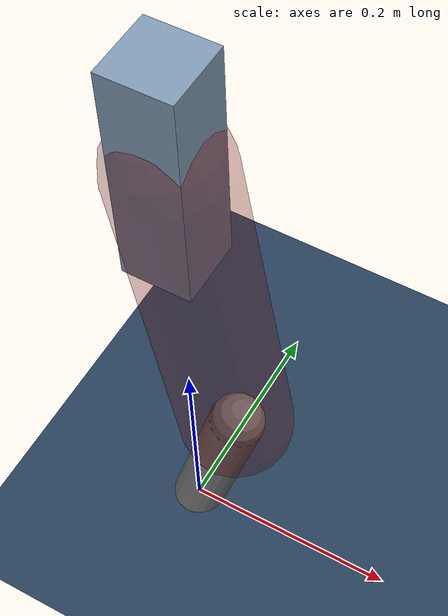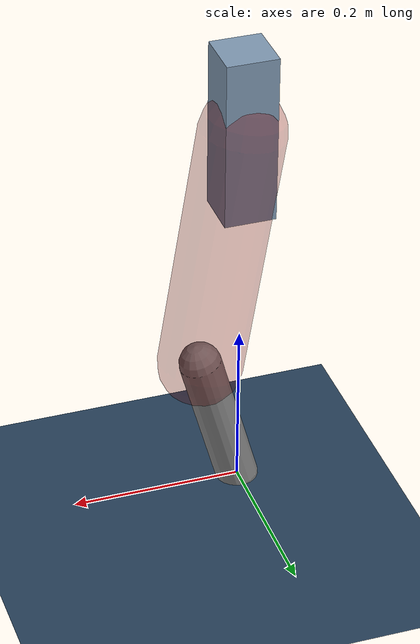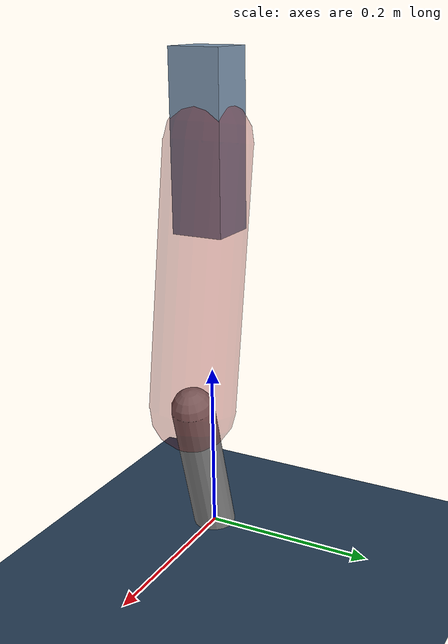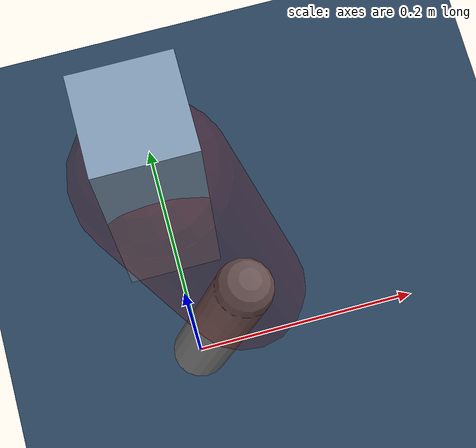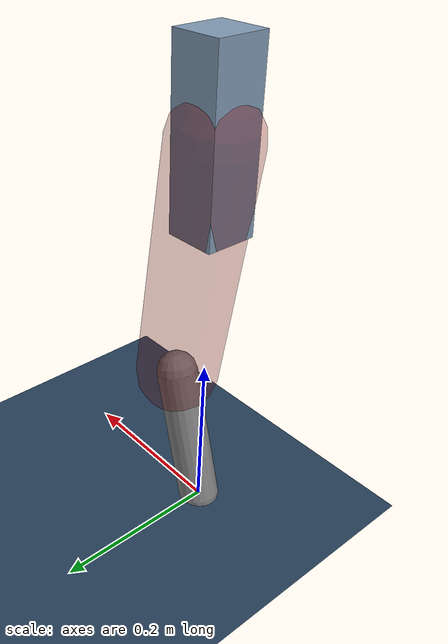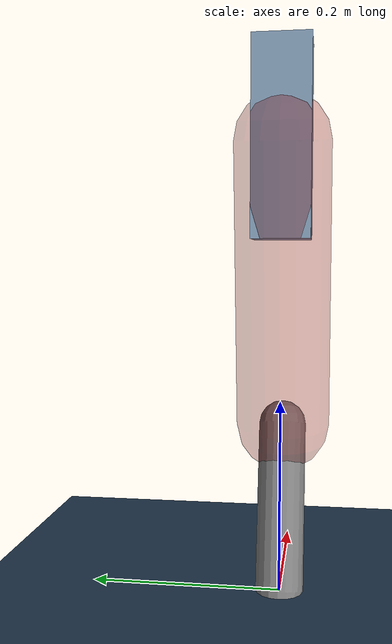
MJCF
<mujoco model="Hopper2D">
	<compiler inertiafromgeom="true" angle="radian" />
	<option timestep="0.001" integrator="implicit" cone="elliptic" solver="Newton" tolerance="1e-10" />

	<default>
		<geom contype="1" conaffinity="1" condim="3" friction="2 0.005 0.0001" solref="0.005 1" />
		<joint limited="true" damping="0.1" />
	</default>

	<asset>
		<texture name="skybox" type="skybox" builtin="gradient" rgb1=".4 .6 .8" rgb2="0 0 0" width="800" height="800" />
		<texture name="grid" type="2d" builtin="checker" rgb1=".1 .2 .3" rgb2=".2 .3 .4" width="300" height="300" mark="edge" markrgb=".2 .3 .4" />
		<material name="ground" texture="grid" texrepeat="1 1" texuniform="true" reflectance="0.1" />
		<material name="leg" rgba="0.5 0.6 0.7 1" />
	</asset>

	<worldbody>

		<geom name="floor" type="plane" size="5 5 0.25" material="ground" />

		<light directional="false" diffuse="0.8 0.8 0.8" specular="0.3 0.3 0.3" pos="0 0 2" dir="0 0 -1" />
		<light mode="targetbodycom" target="base" directional="false" diffuse="0.8 0.8 0.8" specular="0.3 0.3 0.3" pos="0 0 2" dir="0 0 -1" />

		<camera name="fixed" pos="0 -2 1" xyaxes="1 0 0 0 0 1" />
		<camera name="tracking" mode="trackcom" pos="0 -3 1" />

		<body name="root" pos="0 0 0.46760607432619905">
			<joint name="slide_x" type="slide" axis="1 0 0" range="-100 100" />
			<joint name="slide_z" type="slide" axis="0 0 1" range="0 10" />

			<body name="base" pos="0 0 0">
				<geom name="torso" type="box" size="0.03 0.03 0.1" mass="1.967" material="leg" />

				<body name="link1" pos="0 0 0" euler="0 1.4153293396127906 0">
					<joint type="hinge" axis="0 -1 0" pos="0 0 0" name="hinge1" limited="true" range="-3.14 3.14" stiffness="0" damping="0.1" />
					<geom name="thigh" type="capsule" fromto="0 0 0 0.3021846988706869 0 0" size="0.05" rgba="0.5 0 0 0.3" mass="0.9946171568379233" />

					<body name="link2" pos="0.3021846988706869 0 0" euler="0 0.4254689262742459 0">
						<joint type="hinge" axis="0 -1 0" pos="0 0 0" name="hinge2" limited="true" range="-3.14 3.14" stiffness="0" damping="0.1" />
						<geom name="shank" type="capsule" fromto="0 0 0 0.17542137545551217 0 0" size="0.025" mass="0.37997923790996097" />

					</body>
				</body>
			</body>
		</body>
	</worldbody>

	<actuator>
		<motor name="torque1" joint="hinge1" ctrlrange="-60.52744734267699 60.52744734267699" ctrllimited="true" gear="1" />
		<motor name="torque2" joint="hinge2" ctrlrange="-68.90985549076157 68.90985549076157" ctrllimited="true" gear="1" />
	</actuator>
</mujoco>
